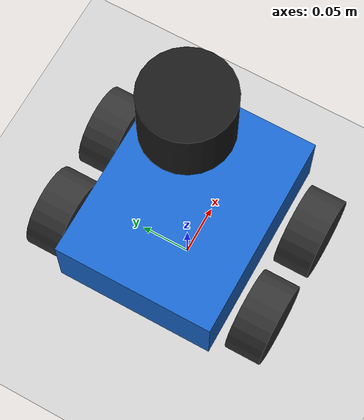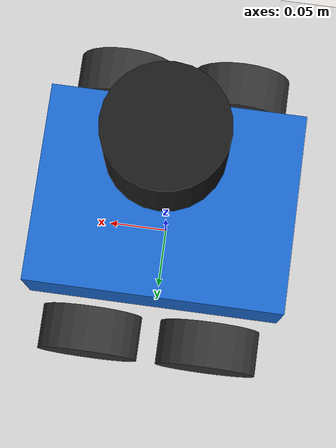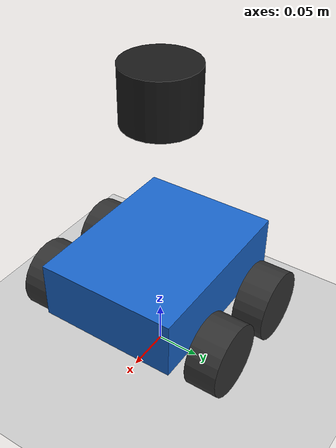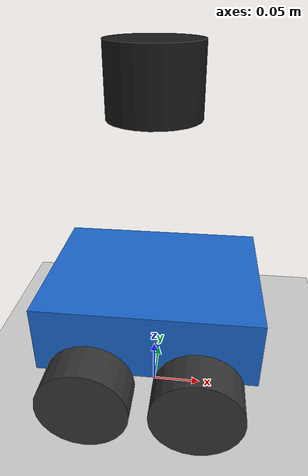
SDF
<?xml version="1.0" ?>
<sdf version="1.8">
  <world name="warehouse_world">

    <physics name="1ms" type="ignored">
      <max_step_size>0.001</max_step_size>
      <real_time_factor>1.0</real_time_factor>
    </physics>

    <plugin filename="gz-sim-physics-system"
            name="gz::sim::systems::Physics"/>
    <plugin filename="gz-sim-user-commands-system"
            name="gz::sim::systems::UserCommands"/>
    <plugin filename="gz-sim-scene-broadcaster-system"
            name="gz::sim::systems::SceneBroadcaster"/>
    <plugin filename="gz-sim-sensors-system"
            name="gz::sim::systems::Sensors">
      <render_engine>ogre2</render_engine>
    </plugin>
    <plugin filename="gz-sim-contact-system"
            name="gz::sim::systems::Contact"/>

    <light name="sun" type="directional">
      <cast_shadows>true</cast_shadows>
      <pose>0 0 10 0 0 0</pose>
      <diffuse>0.8 0.8 0.8 1</diffuse>
      <specular>0.2 0.2 0.2 1</specular>
      <attenuation>
        <range>1000</range>
        <constant>0.9</constant>
        <linear>0.01</linear>
        <quadratic>0.001</quadratic>
      </attenuation>
      <direction>-0.5 0.1 -0.9</direction>
    </light>

    <model name="ground_plane">
      <static>true</static>
      <link name="link">
        <collision name="surface">
          <geometry>
            <plane><normal>0 0 1</normal><size>20 20</size></plane>
          </geometry>
        </collision>
        <visual name="visual">
          <geometry>
            <plane><normal>0 0 1</normal><size>20 20</size></plane>
          </geometry>
          <material>
            <ambient>0.8 0.8 0.8 1</ambient>
            <diffuse>0.8 0.8 0.8 1</diffuse>
          </material>
        </visual>
      </link>
    </model>

    <model name="warehouse_bot">
      <pose>0 0 0.04 0 0 0</pose>

      <!--Chassis (base_link)-->
      <link name="base_link">
        <pose>0 0 0.0725 0 0 0</pose>
        <inertial>
          <mass>3.0</mass>
          <inertia>
            <ixx>0.012</ixx><ixy>0</ixy><ixz>0</ixz>
            <iyy>0.021</iyy><iyz>0</iyz>
            <izz>0.030</izz>
          </inertia>
        </inertial>
        <collision name="collision">
          <geometry>
            <box><size>0.20 0.155 0.065</size></box>
          </geometry>
        </collision>
        <visual name="visual">
          <geometry>
            <box><size>0.20 0.155 0.065</size></box>
          </geometry>
          <material>
            <ambient>0.1 0.4 0.8 1</ambient>
            <diffuse>0.1 0.4 0.8 1</diffuse>
          </material>
        </visual>
      </link>

      <!--Front Left Wheel-->
      <link name="front_left_wheel_link">
        <pose>0.0475 0.105 0.04 1.5707 0 0</pose>
        <inertial>
          <mass>0.3</mass>
          <inertia>
            <ixx>0.001</ixx><ixy>0</ixy><ixz>0</ixz>
            <iyy>0.001</iyy><iyz>0</iyz>
            <izz>0.001</izz>
          </inertia>
        </inertial>
        <collision name="collision">
          <geometry><cylinder><radius>0.04</radius><length>0.035</length></cylinder></geometry>
          <surface><friction><ode><mu>1.0</mu><mu2>1.0</mu2></ode></friction></surface>
        </collision>
        <visual name="visual">
          <geometry><cylinder><radius>0.04</radius><length>0.035</length></cylinder></geometry>
          <material><ambient>0.2 0.2 0.2 1</ambient><diffuse>0.2 0.2 0.2 1</diffuse></material>
        </visual>
      </link>
      <joint name="front_left_wheel_joint" type="revolute">
        <parent>base_link</parent><child>front_left_wheel_link</child>
        <axis><xyz>0 0 1</xyz><limit><lower>-1e+16</lower><upper>1e+16</upper></limit></axis>
      </joint>

      <!--Front Right Wheel -->
      <link name="front_right_wheel_link">
        <pose>0.0475 -0.105 0.04 1.5707 0 0</pose>
        <inertial>
          <mass>0.3</mass>
          <inertia>
            <ixx>0.001</ixx><ixy>0</ixy><ixz>0</ixz>
            <iyy>0.001</iyy><iyz>0</iyz>
            <izz>0.001</izz>
          </inertia>
        </inertial>
        <collision name="collision">
          <geometry><cylinder><radius>0.04</radius><length>0.035</length></cylinder></geometry>
          <surface><friction><ode><mu>1.0</mu><mu2>1.0</mu2></ode></friction></surface>
        </collision>
        <visual name="visual">
          <geometry><cylinder><radius>0.04</radius><length>0.035</length></cylinder></geometry>
          <material><ambient>0.2 0.2 0.2 1</ambient><diffuse>0.2 0.2 0.2 1</diffuse></material>
        </visual>
      </link>
      <joint name="front_right_wheel_joint" type="revolute">
        <parent>base_link</parent><child>front_right_wheel_link</child>
        <axis><xyz>0 0 1</xyz><limit><lower>-1e+16</lower><upper>1e+16</upper></limit></axis>
      </joint>

      <!--Rear Left Wheel -->
      <link name="rear_left_wheel_link">
        <pose>-0.0475 0.105 0.04 1.5707 0 0</pose>
        <inertial>
          <mass>0.3</mass>
          <inertia>
            <ixx>0.001</ixx><ixy>0</ixy><ixz>0</ixz>
            <iyy>0.001</iyy><iyz>0</iyz>
            <izz>0.001</izz>
          </inertia>
        </inertial>
        <collision name="collision">
          <geometry><cylinder><radius>0.04</radius><length>0.035</length></cylinder></geometry>
          <surface><friction><ode><mu>1.0</mu><mu2>1.0</mu2></ode></friction></surface>
        </collision>
        <visual name="visual">
          <geometry><cylinder><radius>0.04</radius><length>0.035</length></cylinder></geometry>
          <material><ambient>0.2 0.2 0.2 1</ambient><diffuse>0.2 0.2 0.2 1</diffuse></material>
        </visual>
      </link>
      <joint name="rear_left_wheel_joint" type="revolute">
        <parent>base_link</parent><child>rear_left_wheel_link</child>
        <axis><xyz>0 0 1</xyz><limit><lower>-1e+16</lower><upper>1e+16</upper></limit></axis>
      </joint>

      <!--Rear Right Wheel -->
      <link name="rear_right_wheel_link">
        <pose>-0.0475 -0.105 0.04 1.5707 0 0</pose>
        <inertial>
          <mass>0.3</mass>
          <inertia>
            <ixx>0.001</ixx><ixy>0</ixy><ixz>0</ixz>
            <iyy>0.001</iyy><iyz>0</iyz>
            <izz>0.001</izz>
          </inertia>
        </inertial>
        <collision name="collision">
          <geometry><cylinder><radius>0.04</radius><length>0.035</length></cylinder></geometry>
          <surface><friction><ode><mu>1.0</mu><mu2>1.0</mu2></ode></friction></surface>
        </collision>
        <visual name="visual">
          <geometry><cylinder><radius>0.04</radius><length>0.035</length></cylinder></geometry>
          <material><ambient>0.2 0.2 0.2 1</ambient><diffuse>0.2 0.2 0.2 1</diffuse></material>
        </visual>
      </link>
      <joint name="rear_right_wheel_joint" type="revolute">
        <parent>base_link</parent><child>rear_right_wheel_link</child>
        <axis><xyz>0 0 1</xyz><limit><lower>-1e+16</lower><upper>1e+16</upper></limit></axis>
      </joint>

      <!--LiDAR (base_laser) at 0.28m from ground -->
      <link name="base_laser">
        <pose>0 0 0.28 0 0 0</pose>
        <inertial>
          <mass>0.18</mass>
          <inertia>
            <ixx>0.001</ixx><ixy>0</ixy><ixz>0</ixz>
            <iyy>0.001</iyy><iyz>0</iyz>
            <izz>0.001</izz>
          </inertia>
        </inertial>
        <visual name="visual">
          <geometry><cylinder><radius>0.04</radius><length>0.06</length></cylinder></geometry>
          <material><ambient>0.1 0.1 0.1 1</ambient><diffuse>0.1 0.1 0.1 1</diffuse></material>
        </visual>
        <sensor name="lidar" type="gpu_lidar">
          <pose>0 0 0 0 0 0</pose>
          <always_on>true</always_on>
          <update_rate>10</update_rate>
          <visualize>true</visualize>
          <topic>/model/warehouse_bot/scan</topic>
          <frame_id>base_laser</frame_id>
          <lidar>
            <scan>
              <horizontal>
                <samples>360</samples>
                <resolution>1</resolution>
                <min_angle>-3.14159</min_angle>
                <max_angle>3.14159</max_angle>
              </horizontal>
            </scan>
            <range>
              <min>0.15</min>
              <max>12.0</max>
              <resolution>0.01</resolution>
            </range>
            <noise>
              <type>gaussian</type>
              <mean>0.0</mean>
              <stddev>0.01</stddev>
            </noise>
          </lidar>
        </sensor>
      </link>
      <joint name="lidar_joint" type="fixed">
        <parent>base_link</parent>
        <child>base_laser</child>
      </joint>

      <!--Diff Drive Plugin (skid steer, all 4 wheels) -->
      <plugin filename="gz-sim-diff-drive-system"
              name="gz::sim::systems::DiffDrive">
        <left_joint>front_left_wheel_joint</left_joint>
        <left_joint>rear_left_wheel_joint</left_joint>
        <right_joint>front_right_wheel_joint</right_joint>
        <right_joint>rear_right_wheel_joint</right_joint>
        <wheel_separation>0.21</wheel_separation>
        <wheel_radius>0.04</wheel_radius>
        <odom_publish_frequency>30</odom_publish_frequency>
        <topic>/model/warehouse_bot/cmd_vel</topic>
        <odom_topic>/model/warehouse_bot/odometry</odom_topic>
        <tf_topic>/model/warehouse_bot/tf</tf_topic>
        <frame_id>odom</frame_id>
        <child_frame_id>base_link</child_frame_id>
        <max_linear_acceleration>1.0</max_linear_acceleration>
      </plugin>

      <plugin filename="gz-sim-joint-state-publisher-system"
              name="gz::sim::systems::JointStatePublisher">
        <topic>/model/warehouse_bot/joint_states</topic>
      </plugin>

    </model>
  </world>
</sdf>
